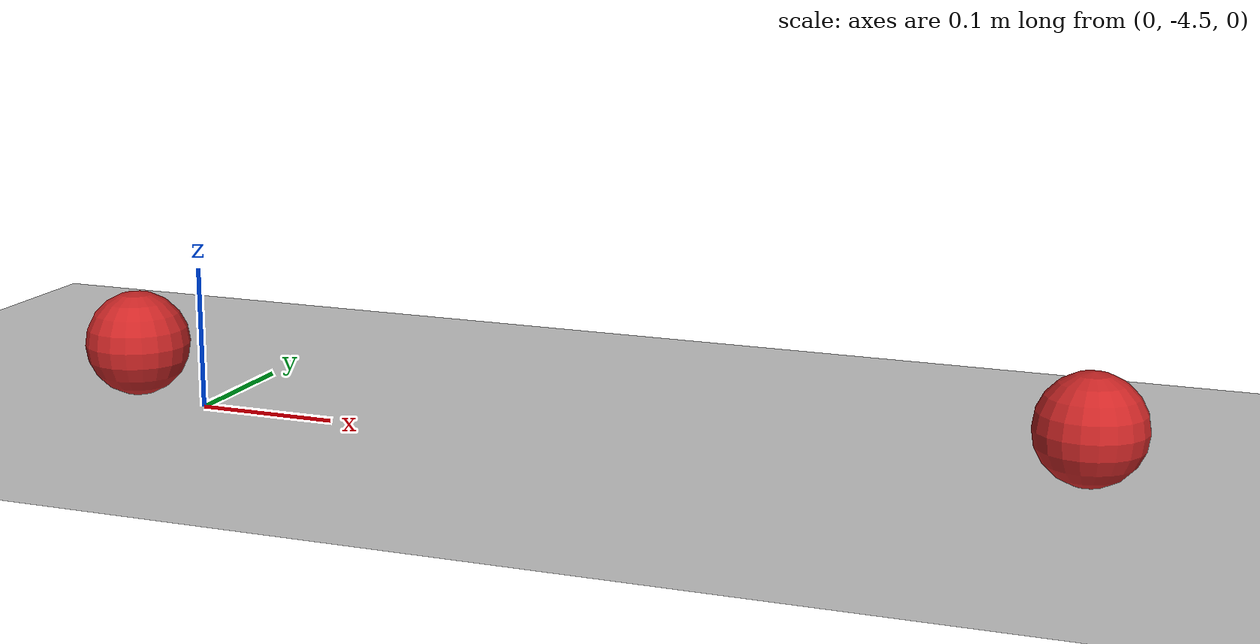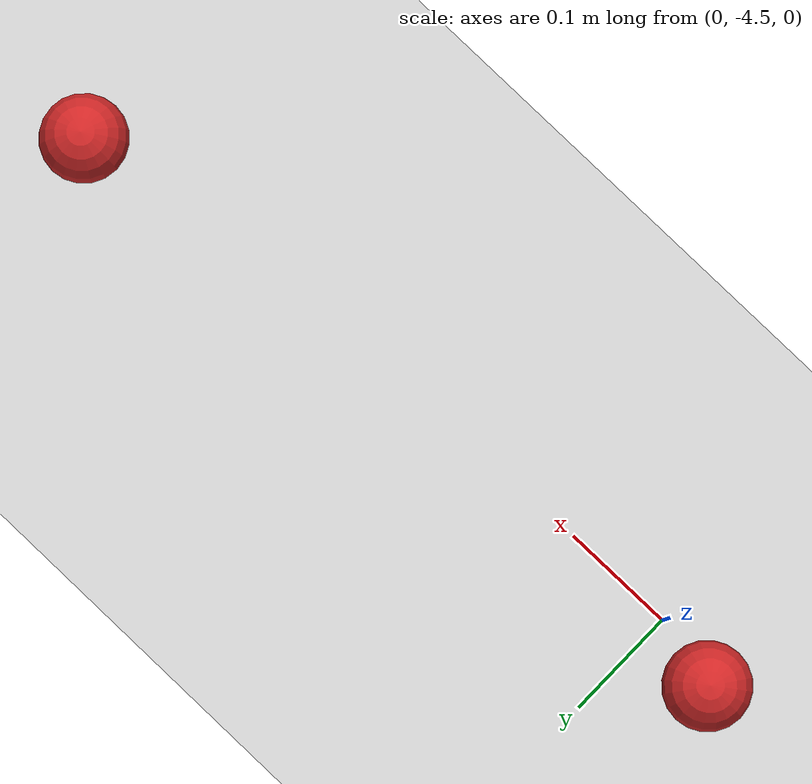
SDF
<sdf version="1.6">
 <world name="default">
  <model name="ground_plane">
   <static>1</static>
   <link name="link">
    <collision name="collision">
     <geometry><plane><normal>0 0 1</normal><size>100 100</size></plane></geometry>
     <surface><friction><ode><mu>100</mu><mu2>50</mu2></ode></friction></surface>
    </collision>
    <visual name="visual">
     <cast_shadows>0</cast_shadows>
     <geometry><plane><normal>0 0 1</normal><size>100 100</size></plane></geometry>
     <material>
      <script><uri>file://media/materials/scripts/gazebo.material</uri><name>Gazebo/Grey</name></script>
     </material>
    </visual>
   </link>
  </model>
  <model name="cricket_ball">
   <link name="link">
    <pose>0 0 0.0375 0 -0 0</pose>
    <inertial>
     <mass>0.1467</mass>
     <inertia>
      <ixx>8.252e-05</ixx>
      <ixy>0</ixy>
      <ixz>0</ixz>
      <iyy>8.252e-05</iyy>
      <iyz>0</iyz>
      <izz>8.252e-05</izz>
     </inertia>
    </inertial>
    <self_collide>1</self_collide>
    <kinematic>1</kinematic>
    <velocity_decay><linear>0</linear><angular>0.005</angular></velocity_decay>
    <visual name="visual">
     <geometry><sphere><radius>0.0375</radius></sphere></geometry>
     <material>
      <script><uri>file://media/materials/scripts/gazebo.material</uri><name>Gazebo/Red</name></script>
      <shader type="pixel"><normal_map>__default__</normal_map></shader>
      <ambient>1 0 0 1</ambient>
      <diffuse>1 0 0 1</diffuse>
      <specular>0.1 0.1 0.1 1</specular>
      <emissive>0 0 0 1</emissive>
     </material>
    </visual>
    <collision name="collision">
     <geometry><sphere><radius>0.0375</radius></sphere></geometry>
     <surface>
      <friction>
       <ode><mu>0</mu><mu2>0</mu2><fdir1>1 0 0</fdir1><slip1>0</slip1><slip2>0</slip2></ode>
       <torsional>
        <coefficient>1</coefficient>
        <patch_radius>0</patch_radius>
        <surface_radius>0.01</surface_radius>
        <use_patch_radius>0</use_patch_radius>
        <ode><slip>0</slip></ode>
       </torsional>
      </friction>
      <bounce><restitution_coefficient>0</restitution_coefficient><threshold>1e+06</threshold></bounce>
      <contact>
       <collide_without_contact>0</collide_without_contact>
       <collide_without_contact_bitmask>1</collide_without_contact_bitmask>
       <collide_bitmask>1</collide_bitmask>
       <ode>
        <soft_cfm>0</soft_cfm>
        <soft_erp>0.2</soft_erp>
        <kp>100000</kp>
        <kd>100</kd>
        <max_vel>100</max_vel>
        <min_depth>0.001</min_depth>
       </ode>
       <bullet>
        <split_impulse>1</split_impulse>
        <split_impulse_penetration_threshold>-0.01</split_impulse_penetration_threshold>
        <soft_cfm>0</soft_cfm>
        <soft_erp>0.2</soft_erp>
        <kp>100000</kp>
        <kd>100</kd>
       </bullet>
      </contact>
     </surface>
    </collision>
   </link>
   <static>0</static>
   <allow_auto_disable>0</allow_auto_disable>
   <pose>0.615927 -4.45727 -0.001014 0 -0 0</pose>
  </model>
  <model name="cricket_ball_0">
   <link name="link">
    <pose>0 0 0.0375 0 -0 0</pose>
    <inertial>
     <mass>0.1467</mass>
     <inertia>
      <ixx>8.252e-05</ixx>
      <ixy>0</ixy>
      <ixz>0</ixz>
      <iyy>8.252e-05</iyy>
      <iyz>0</iyz>
      <izz>8.252e-05</izz>
     </inertia>
    </inertial>
    <kinematic>1</kinematic>
    <velocity_decay><linear>0</linear><angular>0.005</angular></velocity_decay>
    <visual name="visual">
     <geometry><sphere><radius>0.0375</radius></sphere></geometry>
     <material>
      <script><uri>file://media/materials/scripts/gazebo.material</uri><name>Gazebo/Red</name></script>
      <shader type="pixel"><normal_map>__default__</normal_map></shader>
      <ambient>1 0 0 1</ambient>
      <diffuse>1 0 0 1</diffuse>
      <specular>0.1 0.1 0.1 1</specular>
      <emissive>0 0 0 1</emissive>
     </material>
    </visual>
    <collision name="collision">
     <geometry><sphere><radius>0.0375</radius></sphere></geometry>
     <surface>
      <friction>
       <ode><mu>0</mu><mu2>0</mu2><fdir1>1 0 0</fdir1><slip1>0</slip1><slip2>0</slip2></ode>
       <torsional>
        <coefficient>1</coefficient>
        <patch_radius>0</patch_radius>
        <surface_radius>0.01</surface_radius>
        <use_patch_radius>0</use_patch_radius>
        <ode><slip>0</slip></ode>
       </torsional>
      </friction>
      <bounce><restitution_coefficient>0</restitution_coefficient><threshold>1e+06</threshold></bounce>
      <contact>
       <collide_without_contact>0</collide_without_contact>
       <collide_without_contact_bitmask>1</collide_without_contact_bitmask>
       <collide_bitmask>1</collide_bitmask>
       <ode>
        <soft_cfm>0</soft_cfm>
        <soft_erp>0.2</soft_erp>
        <kp>100000</kp>
        <kd>100</kd>
        <max_vel>100</max_vel>
        <min_depth>0.001</min_depth>
       </ode>
       <bullet>
        <split_impulse>1</split_impulse>
        <split_impulse_penetration_threshold>-0.01</split_impulse_penetration_threshold>
        <soft_cfm>0</soft_cfm>
        <soft_erp>0.2</soft_erp>
        <kp>100000</kp>
        <kd>100</kd>
       </bullet>
      </contact>
     </surface>
    </collision>
   </link>
   <static>0</static>
   <allow_auto_disable>0</allow_auto_disable>
   <pose>-0.062095 -4.48428 0 0 -0 0</pose>
  </model>
 </world>
</sdf>
